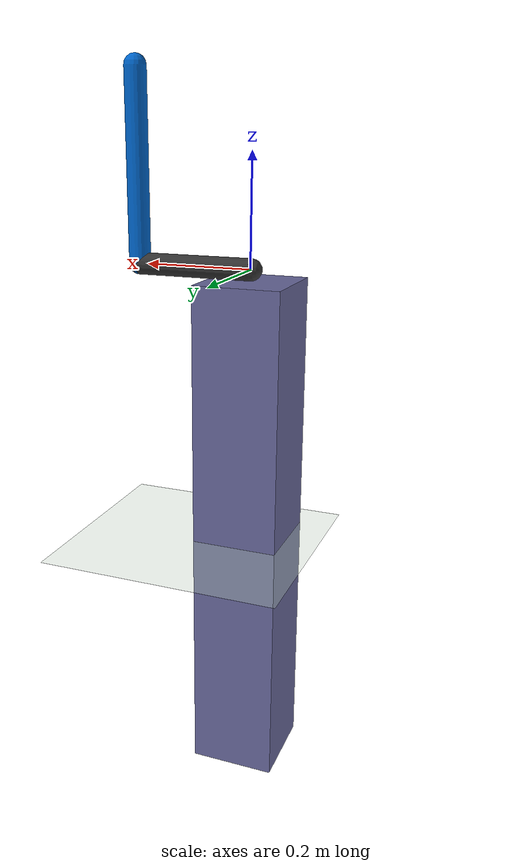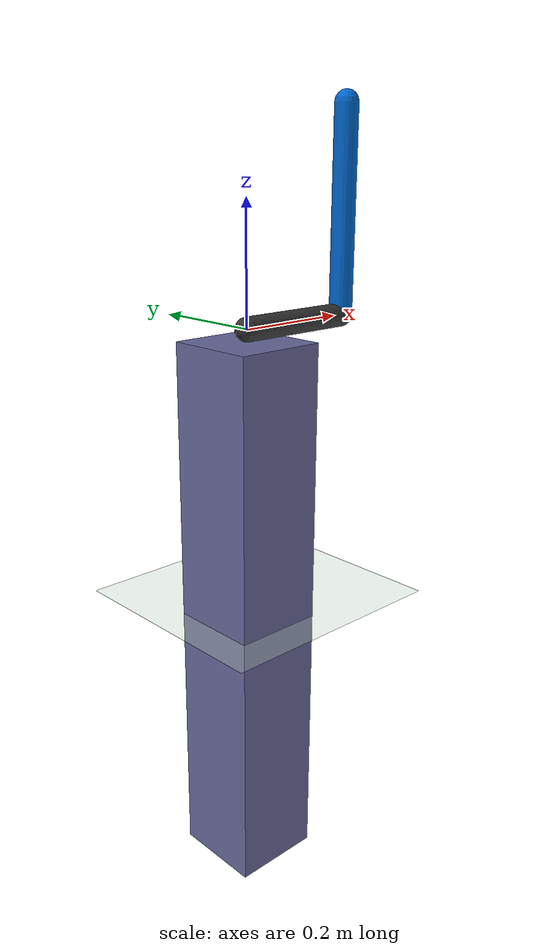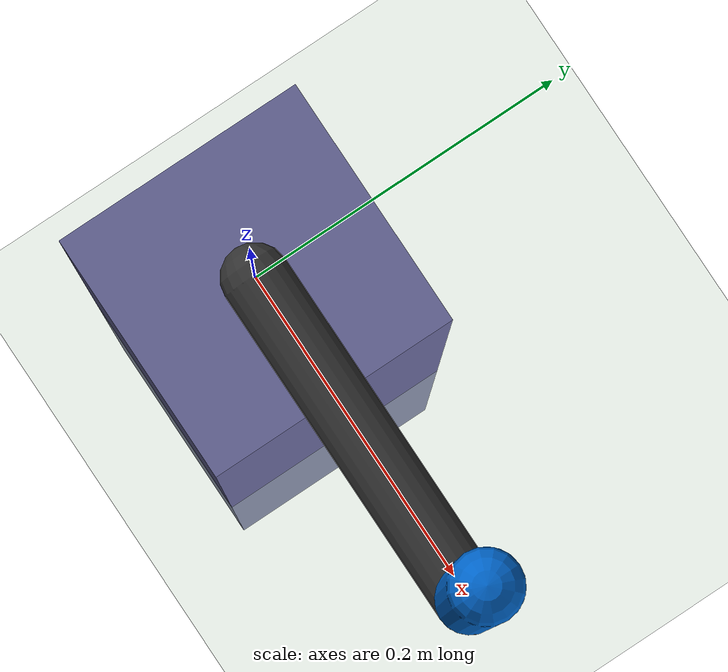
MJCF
<mujoco model="cartpole">
  <compiler angle="radian" coordinate="local" inertiafromgeom="true"/>
  <custom>
    <numeric data="2" name="frame_skip"/>
  </custom>
  <default>
    <joint damping="0.03"/>
  </default>
	<option  integrator="RK4" timestep="0.004"/>
  <size nstack="3000"/>
  <asset>
    <texture name="texplane" type="2d" builtin="checker" rgb1="0.2 0.2 0.2" rgb2="1 1 1" width="1000" height="1000" />
    <material name='MatPlane' texture="texplane" shininess="0" texrepeat="100 100" specular="1"  reflectance="0.2" />
  </asset>
  <worldbody>
     <geom name="floor" material="MatPlane" pos="0 0 -0.5" rgba="0.8 0.9 0.8 1" size="40 40 40" type="plane"/>
    <!--geom name="rail" pos="0 0 0" quat="0.707 0 0.707 0" rgba="0.3 0.3 0.7 1" size="0.02 1" type="capsule"/-->
        <geom name="box" size="0.08 0.08 0.48" pos="0 0 -0.5" rgba="0.4 0.4 0.6 1" type="box"/>
    <body name="cart" pos="0 0 0">
		<joint axis="0 0 1" limited="true" margin="0.01" name="slider" pos="0 0 0" range="-1.570796 1.570796" type="hinge" />
      <geom name="cart" pos="0.10795 0 0" quat="1 1 1 1" rgba=".2 .2 .2 1" size="0.02 0.10795" type="capsule" mass="0.257"/>

      <body name="pole" pos="0.2159 0 0">
        <joint axis="1 0 0" name="hinge" pos="0 0 0" type="hinge"/>
        <geom fromto="0 0 0 0 0 0.337" name="cpole" rgba="0 0.4 0.8 1" size="0.02 0.337" type="capsule" mass="0.127"/>
        <site name="tip" pos="0 0 0.337" size="0.01 0.01"/>

        <!--site name="tip" pos="0 0 .6" size="0.01 0.01"/-->

      </body>
    </body>
  </worldbody>
  <actuator>
    <motor ctrllimited="true" ctrlrange="-1 1" gear="70" joint="slider" name="slide"/>
  </actuator>

  <sensor>
    <jointpos name='sensor_slider'  joint='slider'/>
    <jointpos name='sensor_hinge'  joint='hinge'/>
    <!--jointpos name='sensor_hinge2'  joint='hinge2'/-->

  </sensor>
</mujoco>
